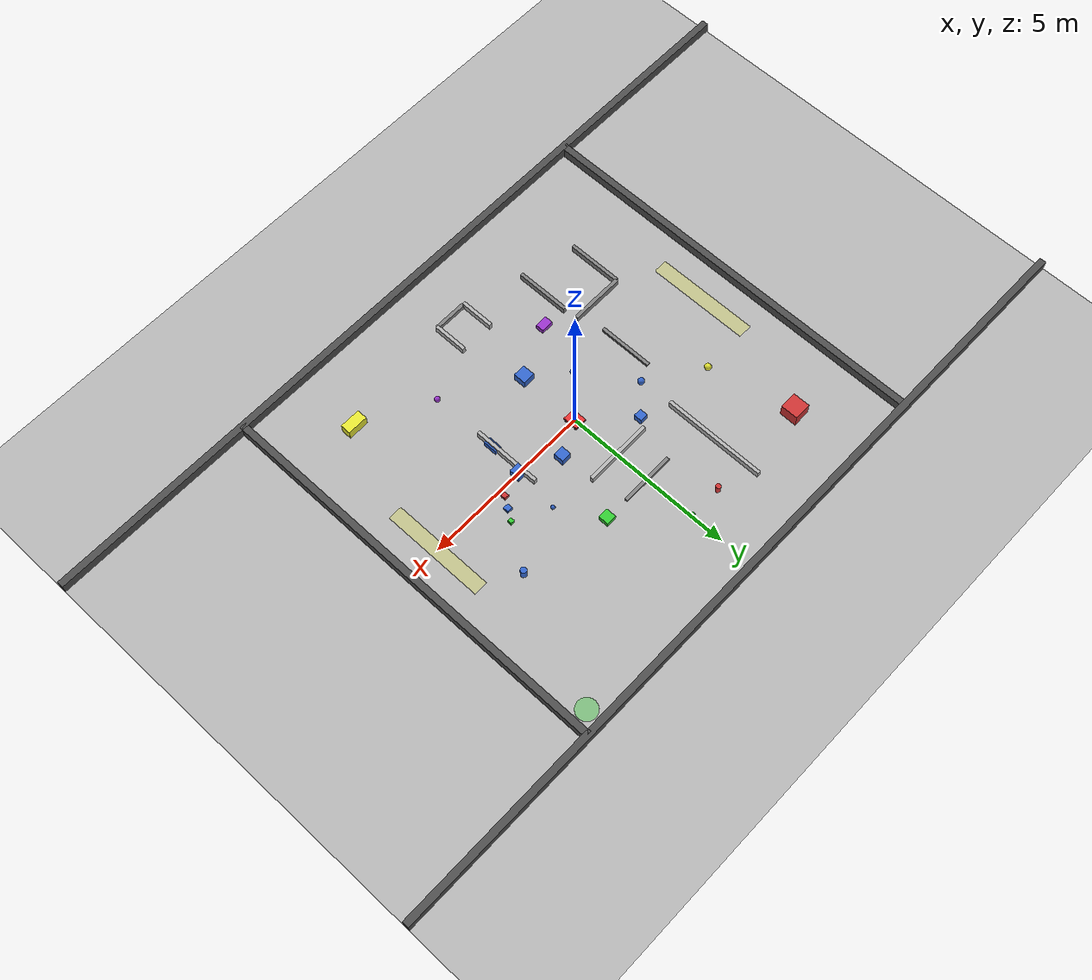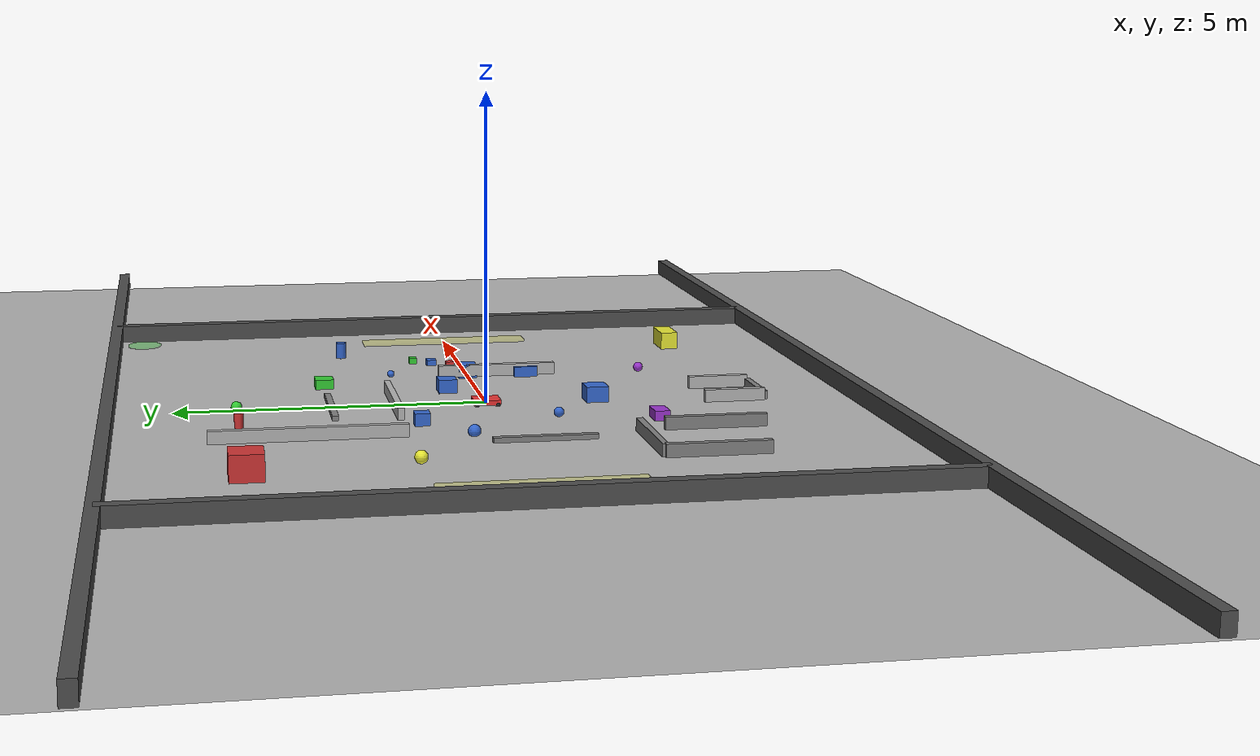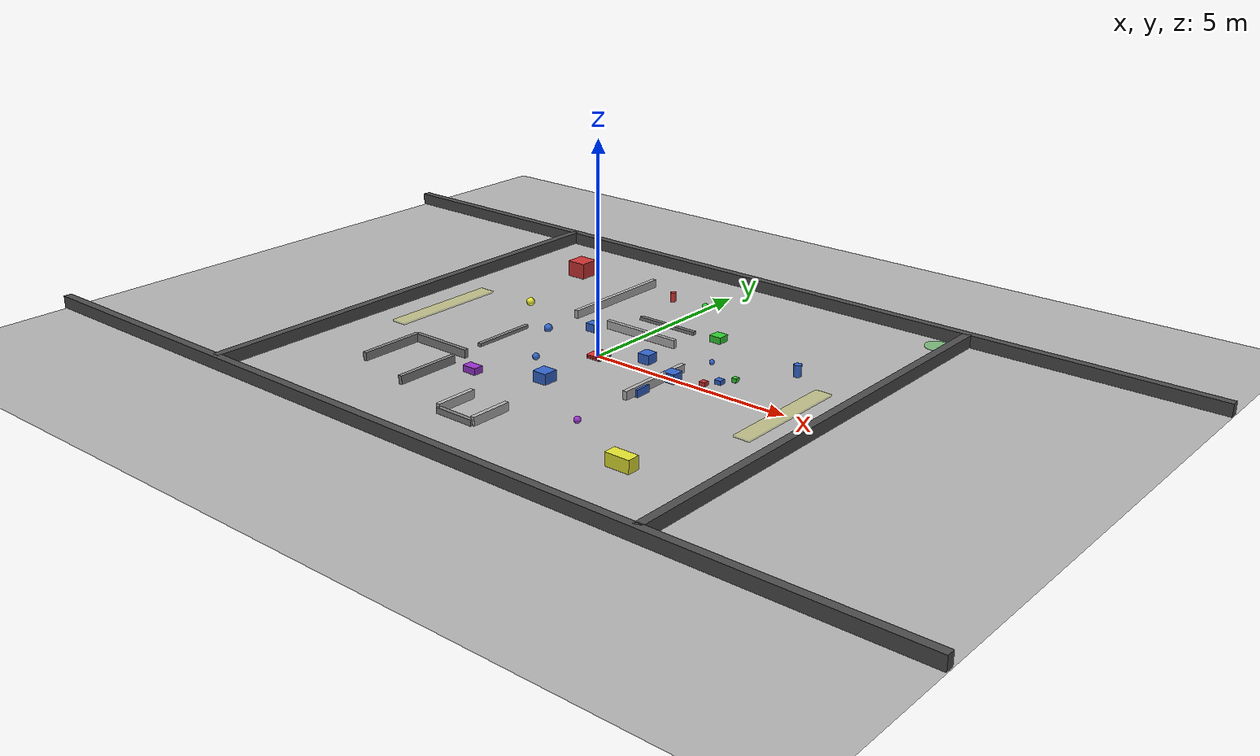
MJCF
<?xml version="1.0"?>
<!--
  MuJoCo 模型文件：cam_plus_front_obstacle.xml
  功能：定义一个带摄像头的轮式小车和多样化障碍物环境的仿真场景
  作者：智能小车仿真系统
  版本：2.0
-->

<mujoco model="cam_plus_front_obstacle">

  <!-- ==================== 仿真配置 ==================== -->
  <option timestep="0.002" integrator="Euler"/>
  <!--
    timestep: 仿真步长，单位秒，越小越精确但计算量越大
    integrator: 积分器类型，Euler为欧拉法，简单快速
  -->

  <compiler angle="radian" coordinate="local" autolimits="false"/>
  <!--
    angle: 角度单位，radian表示使用弧度
    coordinate: 坐标系类型，local表示本地坐标系
    autolimits: 是否自动设置关节限制，false表示手动设置
  -->

  <!-- ==================== 资源定义 ==================== -->
  <asset>
    <!-- 纹理定义 -->
    <texture name="wheel" type="2d" builtin="checker"
             rgb1="0.1 0.1 0.1" rgb2="0.2 0.2 0.2"
             width="128" height="128"/>
    <!--
      name: 纹理名称，用于后续引用
      type: 纹理类型，2d表示二维纹理
      builtin: 内置纹理类型，checker表示棋盘格
      rgb1/rgb2: 两种颜色值 (红,绿,蓝)
      width/height: 纹理分辨率
    -->

    <texture name="grid" type="2d" builtin="checker"
             width="512" height="512"
             rgb1="0.6 0.6 0.6" rgb2="0.8 0.8 0.8"/>
    <!-- 地面网格纹理 -->

    <!-- 材质定义 -->
    <material name="wheel" texture="wheel" texuniform="true" reflectance="0.2"/>
    <!--
      name: 材质名称
      texture: 使用的纹理名称
      texuniform: 纹理是否均匀
      reflectance: 反射率，控制光反射强度
    -->

    <material name="grid" texture="grid" texuniform="true" reflectance="0.2"/>
    <!-- 地面网格材质 -->

    <!-- 障碍物颜色材质 -->
    <material name="obs" rgba="0.2 0.4 0.8 1"/>
    <!-- rgba: 颜色和透明度 (红,绿,蓝,透明度) -->
    <material name="obs_red" rgba="0.8 0.2 0.2 1"/>
    <material name="obs_green" rgba="0.2 0.8 0.2 1"/>
    <material name="obs_yellow" rgba="0.9 0.9 0.2 1"/>
    <material name="obs_purple" rgba="0.6 0.2 0.8 1"/>

    <!-- 墙壁材质 -->
    <material name="wall" rgba="0.5 0.5 0.5 1"/>
    <material name="wall_dark" rgba="0.3 0.3 0.3 1"/>
    <material name="wall_light" rgba="0.7 0.7 0.7 1"/>
  </asset>

  <!-- ==================== 默认参数 ==================== -->
  <default>
    <!-- 轮子默认类 -->
    <default class="wheel">
      <geom type="sphere" size="0.04" material="wheel"
            mass="0.25" friction="1.0 0.005 0.005"/>
      <!--
        type: 几何体类型，sphere表示球体
        size: 尺寸，球体半径为0.04米
        mass: 质量，单位kg
        friction: 摩擦系数 (滑动摩擦, 滚动摩擦, 扭转摩擦)
      -->
    </default>

    <!-- 悬架臂默认类 -->
    <default class="arm">
      <joint type="hinge" axis="0 1 0" damping="12" stiffness="60"
             range="-0.02 0.04" limited="true"/>
      <!--
        type: 关节类型，hinge表示铰链关节
        axis: 旋转轴向量 (x,y,z)
        damping: 阻尼系数，抑制振荡
        stiffness: 刚度系数，模拟弹簧
        range: 运动范围 (最小值, 最大值)
        limited: 是否限制运动范围
      -->
    </default>

    <!-- 转向关节默认类 -->
    <default class="steer">
      <joint type="hinge" axis="0 0 1" damping="5" limited="false"/>
      <!--
        axis: (0,0,1) 表示绕Z轴旋转，用于转向
        limited: false表示无角度限制
      -->
    </default>

    <!-- 驱动电机默认类 -->
    <default class="drive">
      <motor ctrlrange="-0.8 0.8" ctrllimited="true" gear="60"/>
      <!--
        ctrlrange: 控制信号范围 (最小值, 最大值)
        ctrllimited: 是否限制控制信号
        gear: 齿轮比，电机输出扭矩的放大倍数
      -->
    </default>

    <!-- 伺服电机默认类 -->
    <default class="servo">
      <motor ctrlrange="-0.3 0.3" ctrllimited="true" gear="15"/>
      <!--
        转向电机，扭矩较小，控制范围较小
      -->
    </default>
  </default>

  <!-- ==================== 世界主体 ==================== -->
  <worldbody>
    <!-- 地板 -->
    <geom name="floor" type="plane" size="12 12 0.1" material="grid"/>
    <!--
      type: plane表示无限平面
      size: 平面尺寸 (x半宽, y半宽, z高度)
    -->

    <!-- 边界墙壁 -->
    <geom name="border_north" type="box" pos="0 6 0.15" size="12 0.1 0.15" material="wall_dark"/>
    <!--
      type: box表示长方体
      pos: 位置 (x, y, z)
      size: 半尺寸 (x半宽, y半宽, z半高)
    -->
    <geom name="border_south" type="box" pos="0 -6 0.15" size="12 0.1 0.15" material="wall_dark"/>
    <geom name="border_east" type="box" pos="6 0 0.15" size="0.1 6 0.15" material="wall_dark"/>
    <geom name="border_west" type="box" pos="-6 0 0.15" size="0.1 6 0.15" material="wall_dark"/>

    <!-- ==================== 迷宫墙结构 ==================== -->

    <!-- 第一区域：Z字形通道 -->
    <body name="maze_wall1" pos="-2 3 0.1">
      <!--
        name: 物体名称
        pos: 相对父坐标系的位置
      -->
      <geom type="box" size="0.05 1.5 0.1" material="wall_light"/>
    </body>

    <body name="maze_wall2" pos="0 1.5 0.1">
      <geom type="box" size="1.0 0.05 0.1" material="wall_light"/>
    </body>

    <body name="maze_wall3" pos="2 -0.5 0.1">
      <geom type="box" size="0.05 1.0 0.1" material="wall_light"/>
    </body>

    <!-- 第二区域：交叉路口 -->
    <body name="cross_wall1" pos="-3 -2 0.1">
      <geom type="box" size="0.8 0.05 0.1" material="wall"/>
    </body>

    <body name="cross_wall2" pos="-3.8 -2.8 0.1">
      <geom type="box" size="0.05 0.8 0.1" material="wall"/>
    </body>

    <body name="cross_wall3" pos="-2.2 -3.2 0.1">
      <geom type="box" size="0.05 0.8 0.1" material="wall"/>
    </body>

    <!-- ==================== 多样化的静态障碍物 ==================== -->

    <!-- 大型障碍物 -->
    <body name="large_obstacle1" pos="-4 4 0.2">
      <geom type="box" size="0.25 0.25 0.2" material="obs_red" mass="2.0"/>
    </body>

    <body name="large_obstacle2" pos="4 -4 0.15">
      <geom type="box" size="0.3 0.15 0.15" material="obs_yellow" mass="1.8"/>
    </body>

    <!-- 中型障碍物 -->
    <body name="medium_obstacle1" pos="1.5 2.5 0.08">
      <geom type="box" size="0.15 0.15 0.08" material="obs_green" mass="1.0"/>
    </body>

    <body name="medium_obstacle2" pos="-1.5 -2.5 0.08">
      <geom type="box" size="0.18 0.12 0.08" material="obs_purple" mass="1.2"/>
    </body>

    <!-- 小型障碍物（集群） -->
    <body name="small_obstacle1" pos="3 0.5 0.05">
      <geom type="box" size="0.08 0.08 0.05" material="obs" mass="0.5"/>
    </body>

    <body name="small_obstacle2" pos="3.2 0.8 0.05">
      <geom type="box" size="0.06 0.06 0.05" material="obs_green" mass="0.4"/>
    </body>

    <body name="small_obstacle3" pos="2.8 0.2 0.05">
      <geom type="box" size="0.07 0.07 0.05" material="obs_red" mass="0.45"/>
    </body>

    <!-- 圆形/球形障碍物 -->
    <body name="sphere_obstacle1" pos="-3.5 1.5 0.07">
      <geom type="sphere" size="0.1" material="obs_yellow" mass="0.8"/>
      <!--
        type: sphere表示球体
        size: 球体半径
      -->
    </body>

    <body name="sphere_obstacle2" pos="2 -3 0.06">
      <geom type="sphere" size="0.08" material="obs_purple" mass="0.6"/>
    </body>

    <body name="sphere_obstacle3" pos="0 4 0.07">
      <geom type="sphere" size="0.09" material="obs_green" mass="0.7"/>
    </body>

    <!-- 圆柱体障碍物 -->
    <body name="cylinder_obstacle1" pos="-1 4 0.1">
      <geom type="cylinder" size="0.07 0.12" material="obs_red" mass="1.0"/>
      <!--
        type: cylinder表示圆柱体
        size: (半径, 半高)
      -->
    </body>

    <body name="cylinder_obstacle2" pos="4 2 0.1">
      <geom type="cylinder" size="0.09 0.15" material="obs" mass="1.3"/>
    </body>

    <!-- ==================== 通道障碍（需要精确导航） ==================== -->
    <body name="gate_wall1" pos="0.5 -4 0.1">
      <geom type="box" size="0.05 0.5 0.1" material="wall_light"/>
    </body>

    <body name="gate_wall2" pos="-0.5 -4 0.1">
      <geom type="box" size="0.05 0.5 0.1" material="wall_light"/>
    </body>

    <body name="gate_center" pos="0 -4.5 0.07">
      <geom type="box" size="0.5 0.05 0.07" material="wall"/>
    </body>

    <!-- ==================== 动态障碍物预留位置 ==================== -->
    <body name="dynamic_area_marker1" pos="5 0 0.02">
      <!--
        标记区域，用于未来添加动态障碍物
        contype="0": 无碰撞检测
        conaffinity="0": 无碰撞响应
      -->
      <geom type="box" size="0.2 1.5 0.02" rgba="0.9 0.9 0.2 0.3"
            contype="0" conaffinity="0"/>
    </body>

    <body name="dynamic_area_marker2" pos="-5 0 0.02">
      <geom type="box" size="0.2 1.5 0.02" rgba="0.9 0.9 0.2 0.3"
            contype="0" conaffinity="0"/>
    </body>

    <!-- ==================== 目标区域 ==================== -->
    <body name="target_zone" pos="5.5 5.5 0.01">
      <!--
        目标区域，小车需要到达的位置
        rgba: 半透明绿色，表示可通过区域
      -->
      <geom type="cylinder" size="0.3 0.01" rgba="0.2 0.8 0.2 0.4"
            contype="0" conaffinity="0"/>
    </body>

    <!-- ==================== 原有障碍物（保留兼容性） ==================== -->
    <body name="obs_box1" pos="1.0 0.5 0.05">
      <geom type="box" size="0.15 0.15 0.15" material="obs" mass="1"/>
    </body>

    <body name="obs_box2" pos="-1.2 1.2 0.05">
      <geom type="box" size="0.12 0.12 0.12" material="obs" mass="0.8"/>
    </body>

    <body name="obs_box3" pos="0 -1.8 0.05">
      <geom type="box" size="0.18 0.18 0.18" material="obs" mass="1.2"/>
    </body>

    <body name="obs_box4" pos="2.0 -1.0 0.05">
      <geom type="box" size="0.10 0.20 0.10" material="obs" mass="0.9"/>
    </body>

    <!-- 球形障碍物 -->
    <body name="obs_ball1" pos="-1.0 -1.0 0.04">
      <geom type="sphere" size="0.08" material="obs" mass="0.6"/>
    </body>

    <body name="obs_ball2" pos="2.2 1.3 0.04">
      <geom type="sphere" size="0.06" material="obs" mass="0.4"/>
    </body>

    <body name="obs_ball3" pos="-2.0 0.5 0.04">
      <geom type="sphere" size="0.10" material="obs" mass="0.8"/>
    </body>

    <!-- 墙壁障碍物 -->
    <body name="wall1" pos="0 2.5 0.02">
      <geom type="box" size="0.8 0.05 0.04" material="wall" mass="0.5"/>
    </body>

    <body name="wall2" pos="-2.5 -0.5 0.02">
      <geom type="box" size="0.05 0.8 0.04" material="wall" mass="0.5"/>
    </body>

    <!-- ==================== 前方新增障碍物 ==================== -->
    <body name="front_dark_box" pos="2.1 0 0.05">
      <geom type="box" size="0.15 0.15 0.15" material="obs" mass="1"/>
    </body>

    <!-- ==================== 小车模型 ==================== -->
    <body name="chassis" pos="0 0 0.03">
      <!-- 小车底盘主体 -->
      <freejoint/>
      <!--
        freejoint: 自由关节，允许6自由度运动 (3平移 + 3旋转)
        小车在空间中完全自由移动
      -->

      <!-- 底盘几何体 -->
      <geom name="body" type="box" size="0.18 0.22 0.02" pos="0 0 -0.02"
            rgba="0.9 0.2 0.2 1" mass="3"/>
      <!--
        主车身，红色不透明
        pos: 相对于body坐标系的位置偏移
      -->

      <!-- 视觉边框（无碰撞） -->
      <geom type="box" size="0.18 0.22 0.04" rgba="0.9 0.2 0.2 1"
            contype="0" conaffinity="0"/>
      <!--
        仅用于视觉显示，增加车身高度感
        无碰撞属性，不影响物理仿真
      -->

      <!-- ==================== 前左轮总成 ==================== -->
      <body name="front_left_hub" pos="0.16 0.17 0">
        <!--
          前左轮毂位置
          pos: 相对于底盘的位置 (右前角)
        -->
        <inertial pos="0 0 0" mass="0.05" diaginertia="1e-4 1e-4 1e-4"/>
        <!--
          inertial: 惯性属性
          diaginertia: 对角惯性矩 (Ixx, Iyy, Izz)
        -->

        <!-- 转向关节 -->
        <joint name="fl_steer" class="steer"/>
        <!--
          class="steer": 使用steer类定义的默认参数
          控制前轮转向角度
        -->

        <!-- 悬架臂 -->
        <body name="fl_arm" pos="0 0 0">
          <inertial pos="0 0 0" mass="0.05" diaginertia="1e-4 1e-4 1e-4"/>

          <!-- 悬架关节（上下运动） -->
          <joint name="fl_arm_hinge" axis="0 1 0" damping="12" stiffness="60"
                 range="-0.02 0.04" limited="true"/>
          <!--
            模拟悬架弹簧阻尼系统
            range: 允许的垂直运动范围
          -->

          <!-- 轮子 -->
          <body name="fl_wheel" pos="0 0 -0.04">
            <!--
              轮子位置，相对于悬架臂向下偏移
            -->
            <joint name="fl_drive" type="hinge" axis="0 1 0" damping="0.1"/>
            <!--
              驱动关节，绕Y轴旋转
              damping: 较小阻尼，允许自由旋转
            -->
            <geom class="wheel" pos="0 0 0"/>
            <!-- 使用wheel类定义的默认轮子几何体 -->
          </body>
        </body>
      </body>

      <!-- ==================== 前右轮总成 ==================== -->
      <body name="front_right_hub" pos="0.16 -0.17 0">
        <!-- 前右轮毂位置 -->
        <inertial pos="0 0 0" mass="0.05" diaginertia="1e-4 1e-4 1e-4"/>
        <joint name="fr_steer" class="steer"/>

        <body name="fr_arm" pos="0 0 0">
          <inertial pos="0 0 0" mass="0.05" diaginertia="1e-4 1e-4 1e-4"/>
          <joint name="fr_arm_hinge" axis="0 1 0" damping="12" stiffness="60"
                 range="-0.02 0.04" limited="true"/>

          <body name="fr_wheel" pos="0 0 -0.04">
            <joint name="fr_drive" type="hinge" axis="0 1 0" damping="0.1"/>
            <geom class="wheel" pos="0 0 0"/>
          </body>
        </body>
      </body>

      <!-- ==================== 后左轮总成 ==================== -->
      <body name="rear_left" pos="-0.16 0.17 0">
        <!-- 后轮无转向功能，只有悬架和驱动 -->
        <inertial pos="0 0 0" mass="0.05" diaginertia="1e-4 1e-4 1e-4"/>

        <!-- 后悬架关节 -->
        <joint name="rl_arm_hinge" axis="0 1 0" damping="12" stiffness="60"
               range="-0.02 0.04" limited="true"/>

        <!-- 后轮 -->
        <body name="rl_wheel" pos="0 0 -0.04">
          <joint name="rl_drive" type="hinge" axis="0 1 0" damping="0.1"/>
          <geom class="wheel" pos="0 0 0"/>
        </body>
      </body>

      <!-- ==================== 后右轮总成 ==================== -->
      <body name="rear_right" pos="-0.16 -0.17 0">
        <inertial pos="0 0 0" mass="0.05" diaginertia="1e-4 1e-4 1e-4"/>
        <joint name="rr_arm_hinge" axis="0 1 0" damping="12" stiffness="60"
               range="-0.02 0.04" limited="true"/>

        <body name="rr_wheel" pos="0 0 -0.04">
          <joint name="rr_drive" type="hinge" axis="0 1 0" damping="0.1"/>
          <geom class="wheel" pos="0 0 0"/>
        </body>
      </body>

      <!-- ==================== 摄像头系统 ==================== -->
      <body name="cam" pos="0.15 0 0.08" quat="0.819 0.573 0 0">
        <!--
          pos: 摄像头位置（车身前部上方）
          quat: 四元数，定义摄像头朝向 (倾斜向下，向前看)
          四元数格式: (w, x, y, z)
        -->

        <!-- 摄像头传感器 -->
        <camera name="track" mode="fixed" pos="0 0 0" xyaxes="1 0 0  0 0 1" fovy="60"/>
        <!--
          mode: 摄像头模式，fixed表示固定位置
          xyaxes: 摄像头坐标系定义
          fovy: 垂直视野角度，单位度
        -->

        <!-- 摄像头视觉标记（绿色小方块） -->
        <geom type="box" size="0.01 0.02 0.01" rgba="0 1 0 1"
              contype="0" conaffinity="0"/>
        <!--
          仅视觉标记，无碰撞属性
          帮助识别摄像头位置
        -->
      </body>
    </body>
  </worldbody>

  <!-- ==================== 执行器定义 ==================== -->
  <actuator>
    <!-- 转向电机 -->
    <motor name="steer_fl" joint="fl_steer" class="servo"/>
    <!--
      name: 执行器名称
      joint: 控制的关节名称
      class: 使用的默认参数类
    -->
    <motor name="steer_fr" joint="fr_steer" class="servo"/>

    <!-- 驱动电机 -->
    <motor name="drive_fl" joint="fl_drive" class="drive"/>
    <motor name="drive_fr" joint="fr_drive" class="drive"/>
    <motor name="drive_rl" joint="rl_drive" class="drive"/>
    <motor name="drive_rr" joint="rr_drive" class="drive"/>
    <!--
      四轮驱动系统，每个轮子都有独立的驱动电机
      实现全轮驱动控制
    -->
  </actuator>

</mujoco>
